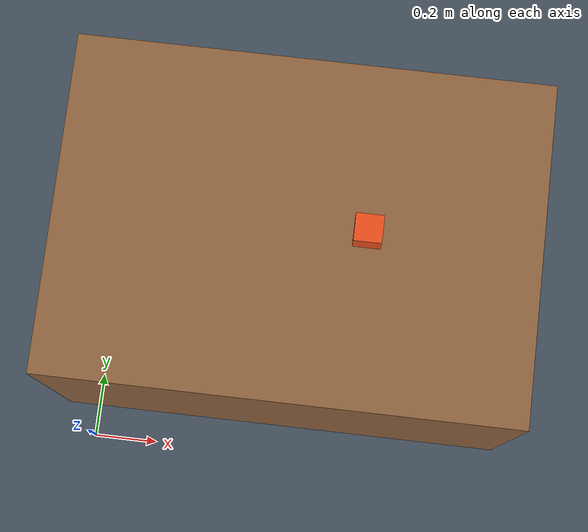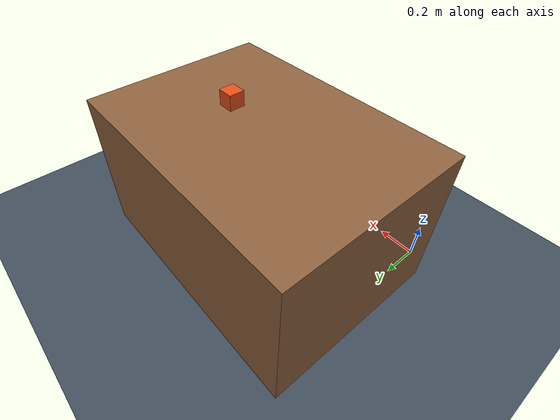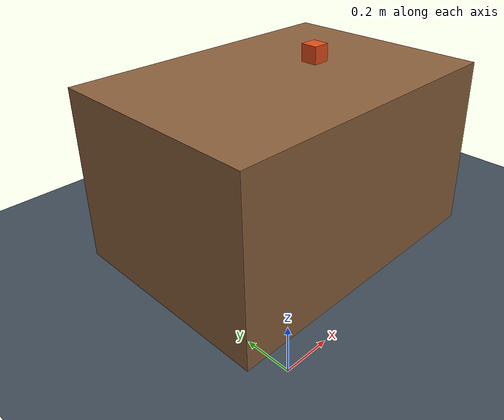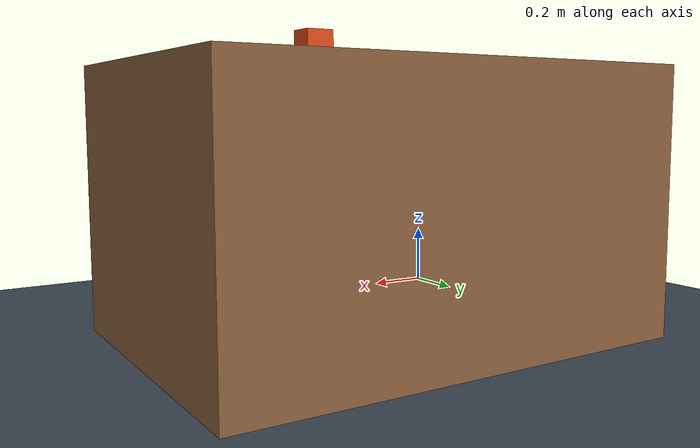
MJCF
<mujoco model="harness_test_lab">
  <option timestep="0.002" integrator="implicitfast" noslip_iterations="1"/>
  <visual><global offwidth="640" offheight="480"/></visual>
  <asset>
    <texture name="checker" type="2d" builtin="checker" rgb1="0.2 0.25 0.3" rgb2="0.3 0.35 0.4" width="512" height="512"/>
    <material name="floor_mat" texture="checker" texrepeat="6 6" texuniform="true"/>
  </asset>
  <worldbody>
    <light pos="0 0 4" dir="0 0 -1" directional="true"/>
    <geom name="floor" type="plane" size="3 3 0.1" material="floor_mat"/>
    <geom name="workbench" type="box" pos="0.6 0.6 0.4" size="0.7 0.5 0.4" rgba="0.55 0.38 0.24 1"/>
    <body name="test_cube" pos="0.8 0.6 0.85">
      <freejoint name="cube_free"/>
      <geom name="cube" type="box" size="0.04 0.04 0.04" mass="0.2" rgba="0.9 0.3 0.1 1"/>
    </body>
  </worldbody>
</mujoco>
